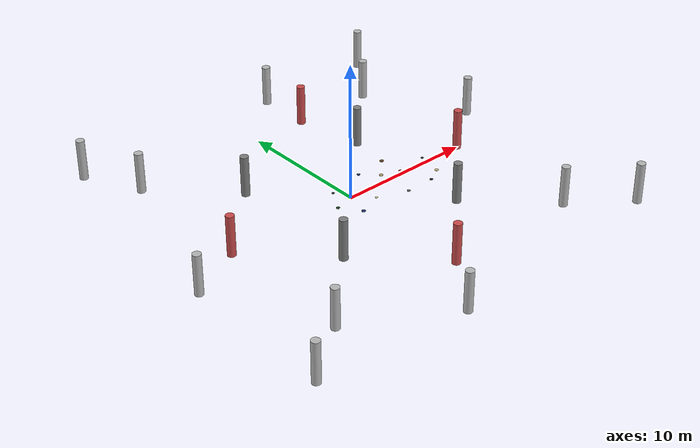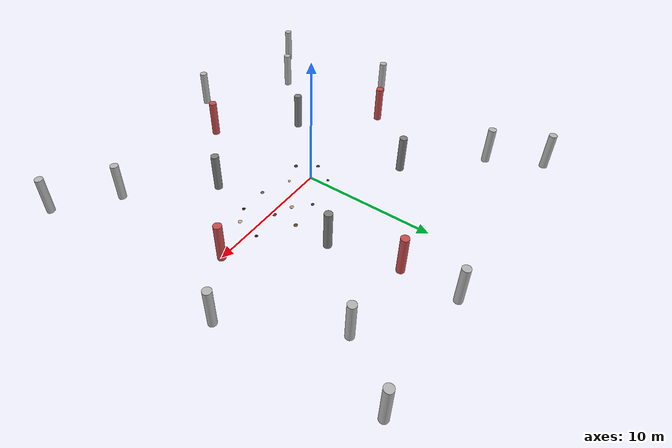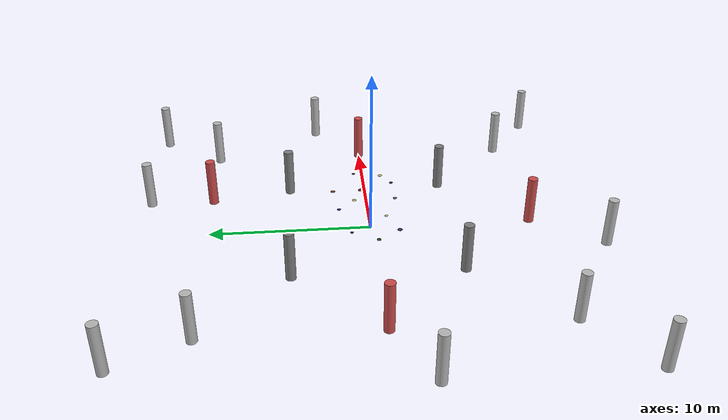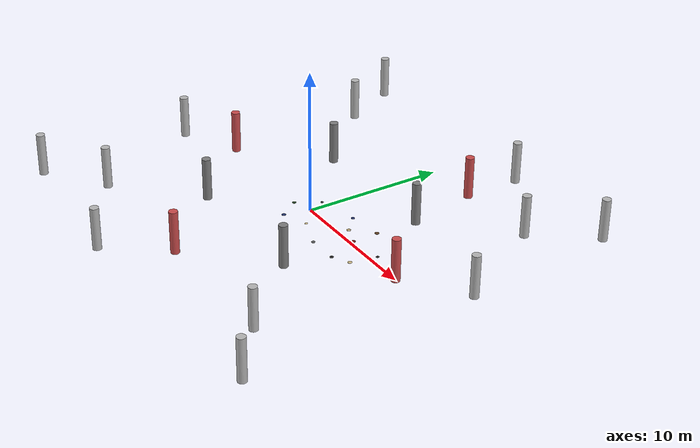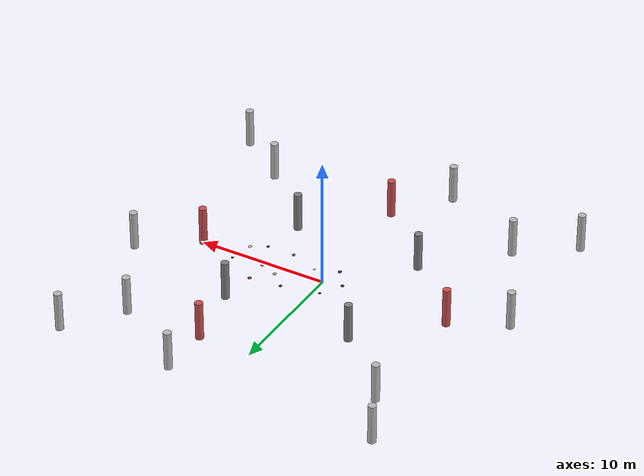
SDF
<sdf version="1.9">
 <world name="iris_runway">
  <physics name="1ms" type="ignore">
   <max_step_size>0.001</max_step_size>
   <real_time_factor>1.0</real_time_factor>
  </physics>
  <plugin filename="gz-sim-physics-system" name="gz::sim::systems::Physics"/>
  <plugin filename="gz-sim-sensors-system" name="gz::sim::systems::Sensors">
   <render_engine>ogre2</render_engine>
  </plugin>
  <plugin filename="gz-sim-user-commands-system" name="gz::sim::systems::UserCommands"/>
  <plugin filename="gz-sim-scene-broadcaster-system" name="gz::sim::systems::SceneBroadcaster"/>
  <plugin filename="gz-sim-imu-system" name="gz::sim::systems::Imu"/>
  <scene><ambient>1.0 1.0 1.0</ambient><background>0.8 0.8 0.8</background></scene>
  <spherical_coordinates>
   <latitude_deg>-35.363262</latitude_deg>
   <longitude_deg>149.165237</longitude_deg>
   <elevation>584</elevation>
   <heading_deg>0</heading_deg>
   <surface_model>EARTH_WGS84</surface_model>
  </spherical_coordinates>
  <light type="directional" name="sun">
   <pose>0 0 10 0 0 0</pose>
   <diffuse>0.8 0.8 0.8 1</diffuse>
   <specular>0.8 0.8 0.8 1</specular>
   <attenuation>
    <range>1000</range>
    <constant>0.9</constant>
    <linear>0.01</linear>
    <quadratic>0.001</quadratic>
   </attenuation>
   <direction>-0.5 0.1 -0.9</direction>
  </light>
  <model name="pillar_1">
   <pose>5  5 1.5 0 0 0</pose>
   <static>true</static>
   <link name="link">
    <collision name="collision">
     <geometry><cylinder><radius>0.3</radius><length>3.0</length></cylinder></geometry>
    </collision>
    <visual name="visual">
     <geometry><cylinder><radius>0.3</radius><length>3.0</length></cylinder></geometry>
     <material><ambient>0.3 0.3 0.3 1</ambient><diffuse>0.5 0.5 0.5 1</diffuse></material>
    </visual>
   </link>
  </model>
  <model name="pillar_2">
   <pose>5 -5 1.5 0 0 0</pose>
   <static>true</static>
   <link name="link">
    <collision name="collision">
     <geometry><cylinder><radius>0.3</radius><length>3.0</length></cylinder></geometry>
    </collision>
    <visual name="visual">
     <geometry><cylinder><radius>0.3</radius><length>3.0</length></cylinder></geometry>
     <material><ambient>0.3 0.3 0.3 1</ambient><diffuse>0.5 0.5 0.5 1</diffuse></material>
    </visual>
   </link>
  </model>
  <model name="pillar_3">
   <pose>-5  5 1.5 0 0 0</pose>
   <static>true</static>
   <link name="link">
    <collision name="collision">
     <geometry><cylinder><radius>0.3</radius><length>3.0</length></cylinder></geometry>
    </collision>
    <visual name="visual">
     <geometry><cylinder><radius>0.3</radius><length>3.0</length></cylinder></geometry>
     <material><ambient>0.3 0.3 0.3 1</ambient><diffuse>0.5 0.5 0.5 1</diffuse></material>
    </visual>
   </link>
  </model>
  <model name="pillar_4">
   <pose>-5 -5 1.5 0 0 0</pose>
   <static>true</static>
   <link name="link">
    <collision name="collision">
     <geometry><cylinder><radius>0.3</radius><length>3.0</length></cylinder></geometry>
    </collision>
    <visual name="visual">
     <geometry><cylinder><radius>0.3</radius><length>3.0</length></cylinder></geometry>
     <material><ambient>0.3 0.3 0.3 1</ambient><diffuse>0.5 0.5 0.5 1</diffuse></material>
    </visual>
   </link>
  </model>
  <model name="pillar_5">
   <pose>10  0 1.5 0 0 0</pose>
   <static>true</static>
   <link name="link">
    <collision name="collision">
     <geometry><cylinder><radius>0.3</radius><length>3.0</length></cylinder></geometry>
    </collision>
    <visual name="visual">
     <geometry><cylinder><radius>0.3</radius><length>3.0</length></cylinder></geometry>
     <material><ambient>0.5 0.2 0.2 1</ambient><diffuse>0.8 0.3 0.3 1</diffuse></material>
    </visual>
   </link>
  </model>
  <model name="pillar_6">
   <pose>-10  0 1.5 0 0 0</pose>
   <static>true</static>
   <link name="link">
    <collision name="collision">
     <geometry><cylinder><radius>0.3</radius><length>3.0</length></cylinder></geometry>
    </collision>
    <visual name="visual">
     <geometry><cylinder><radius>0.3</radius><length>3.0</length></cylinder></geometry>
     <material><ambient>0.5 0.2 0.2 1</ambient><diffuse>0.8 0.3 0.3 1</diffuse></material>
    </visual>
   </link>
  </model>
  <model name="pillar_7">
   <pose>4 10 1.5 0 0 0</pose>
   <static>true</static>
   <link name="link">
    <collision name="collision">
     <geometry><cylinder><radius>0.3</radius><length>3.0</length></cylinder></geometry>
    </collision>
    <visual name="visual">
     <geometry><cylinder><radius>0.3</radius><length>3.0</length></cylinder></geometry>
     <material><ambient>0.5 0.2 0.2 1</ambient><diffuse>0.8 0.3 0.3 1</diffuse></material>
    </visual>
   </link>
  </model>
  <model name="pillar_8">
   <pose>0 -10 1.5 0 0 0</pose>
   <static>true</static>
   <link name="link">
    <collision name="collision">
     <geometry><cylinder><radius>0.3</radius><length>3.0</length></cylinder></geometry>
    </collision>
    <visual name="visual">
     <geometry><cylinder><radius>0.3</radius><length>3.0</length></cylinder></geometry>
     <material><ambient>0.5 0.2 0.2 1</ambient><diffuse>0.8 0.3 0.3 1</diffuse></material>
    </visual>
   </link>
  </model>
  <model name="pillar_9">
   <pose>10  10 1.5 0 0 0</pose>
   <static>true</static>
   <link name="link">
    <collision name="collision">
     <geometry><cylinder><radius>0.3</radius><length>3.0</length></cylinder></geometry>
    </collision>
    <visual name="visual">
     <geometry><cylinder><radius>0.3</radius><length>3.0</length></cylinder></geometry>
    </visual>
   </link>
  </model>
  <model name="pillar_10">
   <pose>10 -10 1.5 0 0 0</pose>
   <static>true</static>
   <link name="link">
    <collision name="collision">
     <geometry><cylinder><radius>0.3</radius><length>3.0</length></cylinder></geometry>
    </collision>
    <visual name="visual">
     <geometry><cylinder><radius>0.3</radius><length>3.0</length></cylinder></geometry>
    </visual>
   </link>
  </model>
  <model name="pillar_11">
   <pose>-10  10 1.5 0 0 0</pose>
   <static>true</static>
   <link name="link">
    <collision name="collision">
     <geometry><cylinder><radius>0.3</radius><length>3.0</length></cylinder></geometry>
    </collision>
    <visual name="visual">
     <geometry><cylinder><radius>0.3</radius><length>3.0</length></cylinder></geometry>
    </visual>
   </link>
  </model>
  <model name="pillar_12">
   <pose>-10 -10 1.5 0 0 0</pose>
   <static>true</static>
   <link name="link">
    <collision name="collision">
     <geometry><cylinder><radius>0.3</radius><length>3.0</length></cylinder></geometry>
    </collision>
    <visual name="visual">
     <geometry><cylinder><radius>0.3</radius><length>3.0</length></cylinder></geometry>
    </visual>
   </link>
  </model>
  <model name="pillar_13">
   <pose>14   3 1.5 0 0 0</pose>
   <static>true</static>
   <link name="link">
    <collision name="collision">
     <geometry><cylinder><radius>0.3</radius><length>3.0</length></cylinder></geometry>
    </collision>
    <visual name="visual">
     <geometry><cylinder><radius>0.3</radius><length>3.0</length></cylinder></geometry>
    </visual>
   </link>
  </model>
  <model name="pillar_14">
   <pose>-14  -2 1.5 0 0 0</pose>
   <static>true</static>
   <link name="link">
    <collision name="collision">
     <geometry><cylinder><radius>0.3</radius><length>3.0</length></cylinder></geometry>
    </collision>
    <visual name="visual">
     <geometry><cylinder><radius>0.3</radius><length>3.0</length></cylinder></geometry>
    </visual>
   </link>
  </model>
  <model name="pillar_15">
   <pose>4  14 1.5 0 0 0</pose>
   <static>true</static>
   <link name="link">
    <collision name="collision">
     <geometry><cylinder><radius>0.3</radius><length>3.0</length></cylinder></geometry>
    </collision>
    <visual name="visual">
     <geometry><cylinder><radius>0.3</radius><length>3.0</length></cylinder></geometry>
    </visual>
   </link>
  </model>
  <model name="pillar_16">
   <pose>-3 -14 1.5 0 0 0</pose>
   <static>true</static>
   <link name="link">
    <collision name="collision">
     <geometry><cylinder><radius>0.3</radius><length>3.0</length></cylinder></geometry>
    </collision>
    <visual name="visual">
     <geometry><cylinder><radius>0.3</radius><length>3.0</length></cylinder></geometry>
    </visual>
   </link>
  </model>
  <model name="pillar_17">
   <pose>13  14 1.5 0 0 0</pose>
   <static>true</static>
   <link name="link">
    <collision name="collision">
     <geometry><cylinder><radius>0.3</radius><length>3.0</length></cylinder></geometry>
    </collision>
    <visual name="visual">
     <geometry><cylinder><radius>0.3</radius><length>3.0</length></cylinder></geometry>
    </visual>
   </link>
  </model>
  <model name="pillar_18">
   <pose>-14 -13 1.5 0 0 0</pose>
   <static>true</static>
   <link name="link">
    <collision name="collision">
     <geometry><cylinder><radius>0.3</radius><length>3.0</length></cylinder></geometry>
    </collision>
    <visual name="visual">
     <geometry><cylinder><radius>0.3</radius><length>3.0</length></cylinder></geometry>
    </visual>
   </link>
  </model>
  <model name="pillar_19">
   <pose>14 -13 1.5 0 0 0</pose>
   <static>true</static>
   <link name="link">
    <collision name="collision">
     <geometry><cylinder><radius>0.3</radius><length>3.0</length></cylinder></geometry>
    </collision>
    <visual name="visual">
     <geometry><cylinder><radius>0.3</radius><length>3.0</length></cylinder></geometry>
    </visual>
   </link>
  </model>
  <model name="pillar_20">
   <pose>-12  14 1.5 0 0 0</pose>
   <static>true</static>
   <link name="link">
    <collision name="collision">
     <geometry><cylinder><radius>0.3</radius><length>3.0</length></cylinder></geometry>
    </collision>
    <visual name="visual">
     <geometry><cylinder><radius>0.3</radius><length>3.0</length></cylinder></geometry>
    </visual>
   </link>
  </model>
  <model name="mine_0">
   <static>true</static>
   <pose>6.797 -1.255 0 0 0 1.148</pose>
   <link name="link">
    <visual name="body">
     <pose>0 0 0.0082 0 0 0</pose>
     <geometry><cylinder><radius>0.143</radius><length>0.016</length></cylinder></geometry>
     <material>
      <ambient>0.800 0.720 0.520 1</ambient>
      <diffuse>0.800 0.720 0.520 1</diffuse>
      <specular>0 0 0 1</specular>
     </material>
    </visual>
    <visual name="dome">
     <pose>0 0 0.0164 0 0 0</pose>
     <geometry><ellipsoid><radii>0.1479 0.1479 0.0109</radii></ellipsoid></geometry>
     <material>
      <ambient>0.800 0.720 0.520 1</ambient>
      <diffuse>0.800 0.720 0.520 1</diffuse>
      <specular>0 0 0 1</specular>
     </material>
    </visual>
   </link>
  </model>
  <model name="mine_1">
   <static>true</static>
   <pose>-1.441 -0.360 0 0 0 -2.034</pose>
   <link name="link">
    <visual name="body">
     <pose>0 0 0.0076 0 0 0</pose>
     <geometry><cylinder><radius>0.129</radius><length>0.015</length></cylinder></geometry>
     <material>
      <ambient>0.130 0.250 0.120 1</ambient>
      <diffuse>0.130 0.250 0.120 1</diffuse>
      <specular>0 0 0 1</specular>
     </material>
    </visual>
    <visual name="dome">
     <pose>0 0 0.0151 0 0 0</pose>
     <geometry><ellipsoid><radii>0.1329 0.1329 0.0101</radii></ellipsoid></geometry>
     <material>
      <ambient>0.130 0.250 0.120 1</ambient>
      <diffuse>0.130 0.250 0.120 1</diffuse>
      <specular>0 0 0 1</specular>
     </material>
    </visual>
   </link>
  </model>
  <model name="mine_2">
   <static>true</static>
   <pose>7.174 0.575 0 0 0 2.080</pose>
   <link name="link">
    <visual name="body">
     <pose>0 0 0.0075 0 0 0</pose>
     <geometry><cylinder><radius>0.110</radius><length>0.015</length></cylinder></geometry>
     <material>
      <ambient>0.070 0.070 0.070 1</ambient>
      <diffuse>0.070 0.070 0.070 1</diffuse>
      <specular>0 0 0 1</specular>
     </material>
    </visual>
    <visual name="dome">
     <pose>0 0 0.0150 0 0 0</pose>
     <geometry><ellipsoid><radii>0.1131 0.1131 0.0100</radii></ellipsoid></geometry>
     <material>
      <ambient>0.070 0.070 0.070 1</ambient>
      <diffuse>0.070 0.070 0.070 1</diffuse>
      <specular>0 0 0 1</specular>
     </material>
    </visual>
   </link>
  </model>
  <model name="mine_3">
   <static>true</static>
   <pose>3.530 -1.928 0 0 0 -0.509</pose>
   <link name="link">
    <visual name="body">
     <pose>0 0 0.0089 0 0 0</pose>
     <geometry><cylinder><radius>0.127</radius><length>0.018</length></cylinder></geometry>
     <material>
      <ambient>0.360 0.370 0.370 1</ambient>
      <diffuse>0.360 0.370 0.370 1</diffuse>
      <specular>0 0 0 1</specular>
     </material>
    </visual>
    <visual name="dome">
     <pose>0 0 0.0179 0 0 0</pose>
     <geometry><ellipsoid><radii>0.1305 0.1305 0.0119</radii></ellipsoid></geometry>
     <material>
      <ambient>0.360 0.370 0.370 1</ambient>
      <diffuse>0.360 0.370 0.370 1</diffuse>
      <specular>0 0 0 1</specular>
     </material>
    </visual>
   </link>
  </model>
  <model name="mine_4">
   <static>true</static>
   <pose>-0.421 -1.771 0 0 0 -2.353</pose>
   <link name="link">
    <visual name="body">
     <pose>0 0 0.0104 0 0 0</pose>
     <geometry><cylinder><radius>0.143</radius><length>0.021</length></cylinder></geometry>
     <material>
      <ambient>0.140 0.200 0.420 1</ambient>
      <diffuse>0.140 0.200 0.420 1</diffuse>
      <specular>0 0 0 1</specular>
     </material>
    </visual>
    <visual name="dome">
     <pose>0 0 0.0209 0 0 0</pose>
     <geometry><ellipsoid><radii>0.1475 0.1475 0.0139</radii></ellipsoid></geometry>
     <material>
      <ambient>0.140 0.200 0.420 1</ambient>
      <diffuse>0.140 0.200 0.420 1</diffuse>
      <specular>0 0 0 1</specular>
     </material>
    </visual>
   </link>
  </model>
  <model name="mine_5">
   <static>true</static>
   <pose>4.821 0.283 0 0 0 1.507</pose>
   <link name="link">
    <visual name="body">
     <pose>0 0 0.0110 0 0 0</pose>
     <geometry><cylinder><radius>0.141</radius><length>0.022</length></cylinder></geometry>
     <material>
      <ambient>0.500 0.130 0.100 1</ambient>
      <diffuse>0.500 0.130 0.100 1</diffuse>
      <specular>0 0 0 1</specular>
     </material>
    </visual>
    <visual name="dome">
     <pose>0 0 0.0220 0 0 0</pose>
     <geometry><ellipsoid><radii>0.1450 0.1450 0.0147</radii></ellipsoid></geometry>
     <material>
      <ambient>0.500 0.130 0.100 1</ambient>
      <diffuse>0.500 0.130 0.100 1</diffuse>
      <specular>0 0 0 1</specular>
     </material>
    </visual>
   </link>
  </model>
  <model name="mine_6">
   <static>true</static>
   <pose>2.356 1.863 0 0 0 2.353</pose>
   <link name="link">
    <visual name="body">
     <pose>0 0 0.0093 0 0 0</pose>
     <geometry><cylinder><radius>0.116</radius><length>0.019</length></cylinder></geometry>
     <material>
      <ambient>0.140 0.200 0.420 1</ambient>
      <diffuse>0.140 0.200 0.420 1</diffuse>
      <specular>0 0 0 1</specular>
     </material>
    </visual>
    <visual name="dome">
     <pose>0 0 0.0186 0 0 0</pose>
     <geometry><ellipsoid><radii>0.1196 0.1196 0.0124</radii></ellipsoid></geometry>
     <material>
      <ambient>0.140 0.200 0.420 1</ambient>
      <diffuse>0.140 0.200 0.420 1</diffuse>
      <specular>0 0 0 1</specular>
     </material>
    </visual>
   </link>
  </model>
  <model name="mine_7">
   <static>true</static>
   <pose>1.316 -1.107 0 0 0 -2.491</pose>
   <link name="link">
    <visual name="body">
     <pose>0 0 0.0078 0 0 0</pose>
     <geometry><cylinder><radius>0.100</radius><length>0.016</length></cylinder></geometry>
     <material>
      <ambient>0.800 0.720 0.520 1</ambient>
      <diffuse>0.800 0.720 0.520 1</diffuse>
      <specular>0 0 0 1</specular>
     </material>
    </visual>
    <visual name="dome">
     <pose>0 0 0.0156 0 0 0</pose>
     <geometry><ellipsoid><radii>0.1031 0.1031 0.0104</radii></ellipsoid></geometry>
     <material>
      <ambient>0.800 0.720 0.520 1</ambient>
      <diffuse>0.800 0.720 0.520 1</diffuse>
      <specular>0 0 0 1</specular>
     </material>
    </visual>
   </link>
  </model>
  <model name="mine_8">
   <static>true</static>
   <pose>-0.502 1.231 0 0 0 -1.830</pose>
   <link name="link">
    <visual name="body">
     <pose>0 0 0.0102 0 0 0</pose>
     <geometry><cylinder><radius>0.102</radius><length>0.020</length></cylinder></geometry>
     <material>
      <ambient>0.070 0.070 0.070 1</ambient>
      <diffuse>0.070 0.070 0.070 1</diffuse>
      <specular>0 0 0 1</specular>
     </material>
    </visual>
    <visual name="dome">
     <pose>0 0 0.0204 0 0 0</pose>
     <geometry><ellipsoid><radii>0.1055 0.1055 0.0136</radii></ellipsoid></geometry>
     <material>
      <ambient>0.070 0.070 0.070 1</ambient>
      <diffuse>0.070 0.070 0.070 1</diffuse>
      <specular>0 0 0 1</specular>
     </material>
    </visual>
   </link>
  </model>
  <model name="mine_9">
   <static>true</static>
   <pose>5.669 -1.897 0 0 0 -2.498</pose>
   <link name="link">
    <visual name="body">
     <pose>0 0 0.0118 0 0 0</pose>
     <geometry><cylinder><radius>0.123</radius><length>0.024</length></cylinder></geometry>
     <material>
      <ambient>0.070 0.070 0.070 1</ambient>
      <diffuse>0.070 0.070 0.070 1</diffuse>
      <specular>0 0 0 1</specular>
     </material>
    </visual>
    <visual name="dome">
     <pose>0 0 0.0235 0 0 0</pose>
     <geometry><ellipsoid><radii>0.1268 0.1268 0.0157</radii></ellipsoid></geometry>
     <material>
      <ambient>0.070 0.070 0.070 1</ambient>
      <diffuse>0.070 0.070 0.070 1</diffuse>
      <specular>0 0 0 1</specular>
     </material>
    </visual>
   </link>
  </model>
  <model name="mine_10">
   <static>true</static>
   <pose>3.479 0.797 0 0 0 0.715</pose>
   <link name="link">
    <visual name="body">
     <pose>0 0 0.0103 0 0 0</pose>
     <geometry><cylinder><radius>0.139</radius><length>0.021</length></cylinder></geometry>
     <material>
      <ambient>0.720 0.640 0.450 1</ambient>
      <diffuse>0.720 0.640 0.450 1</diffuse>
      <specular>0 0 0 1</specular>
     </material>
    </visual>
    <visual name="dome">
     <pose>0 0 0.0205 0 0 0</pose>
     <geometry><ellipsoid><radii>0.1437 0.1437 0.0137</radii></ellipsoid></geometry>
     <material>
      <ambient>0.720 0.640 0.450 1</ambient>
      <diffuse>0.720 0.640 0.450 1</diffuse>
      <specular>0 0 0 1</specular>
     </material>
    </visual>
   </link>
  </model>
  <model name="mine_11">
   <static>true</static>
   <pose>4.764 2.140 0 0 0 -2.208</pose>
   <link name="link">
    <visual name="body">
     <pose>0 0 0.0102 0 0 0</pose>
     <geometry><cylinder><radius>0.143</radius><length>0.020</length></cylinder></geometry>
     <material>
      <ambient>0.400 0.270 0.150 1</ambient>
      <diffuse>0.400 0.270 0.150 1</diffuse>
      <specular>0 0 0 1</specular>
     </material>
    </visual>
    <visual name="dome">
     <pose>0 0 0.0204 0 0 0</pose>
     <geometry><ellipsoid><radii>0.1478 0.1478 0.0136</radii></ellipsoid></geometry>
     <material>
      <ambient>0.400 0.270 0.150 1</ambient>
      <diffuse>0.400 0.270 0.150 1</diffuse>
      <specular>0 0 0 1</specular>
     </material>
    </visual>
   </link>
  </model>
 </world>
</sdf>
